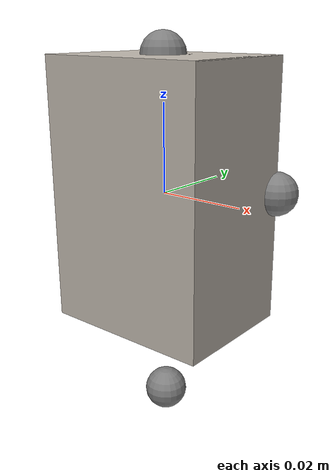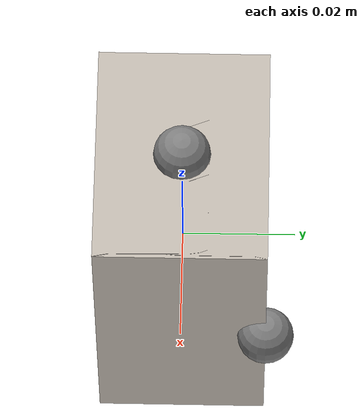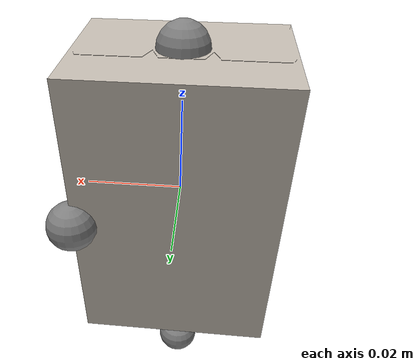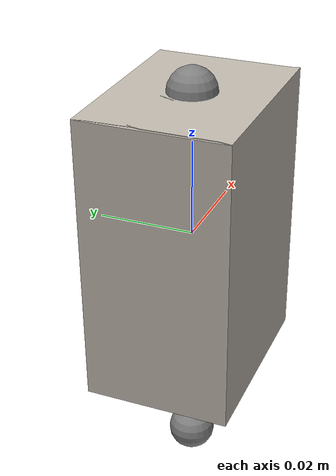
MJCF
<mujoco model="cereal">
  <asset>
    <mesh file="meshes/cereal.stl" name="cereal_mesh" scale="0.4 1.0 0.4"/>
    <texture type="cube" file="../textures/cereal.png" rgb1="1 1 1" name="tex-cereal"/>
    <material name="cereal" reflectance="0.5" texrepeat="3 3" texture="tex-cereal" texuniform="false"/>
  </asset>
  <worldbody>
    <body>
      <body name="collision">
        <geom pos="0 0 0" mesh="cereal_mesh" type="mesh" solimp="0.998 0.998 0.001" solref="0.001 1" density="150" friction="0.95 0.3 0.1" material="cereal" group="1" condim="4"/>
      </body>
      <body name="visual">
        <geom pos="0 0 0" mesh="cereal_mesh" type="mesh" material="cereal"  conaffinity="0" contype="0"  group="0" mass="0.0001"/>
        <geom pos="0 0 0" mesh="cereal_mesh" type="mesh" material="cereal"  conaffinity="0" contype="0"  group="1" mass="0.0001"/>
      </body>
      <site pos="0 0 -0.05" name="bottom_site"/>
      <site pos="0 0 0.03" name="top_site"/>
      <site pos="0.02 0.015 0" name="horizontal_radius_site"/>
    </body>
  </worldbody>
</mujoco>
